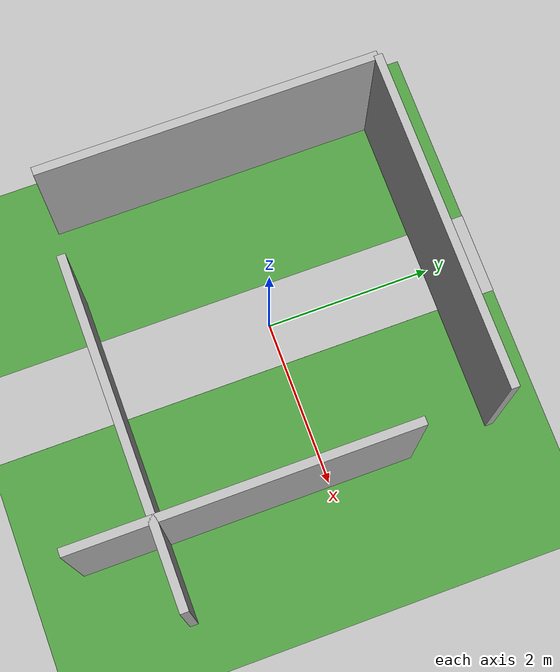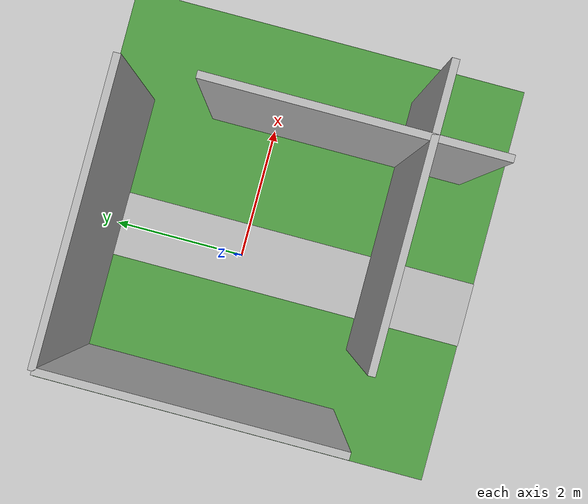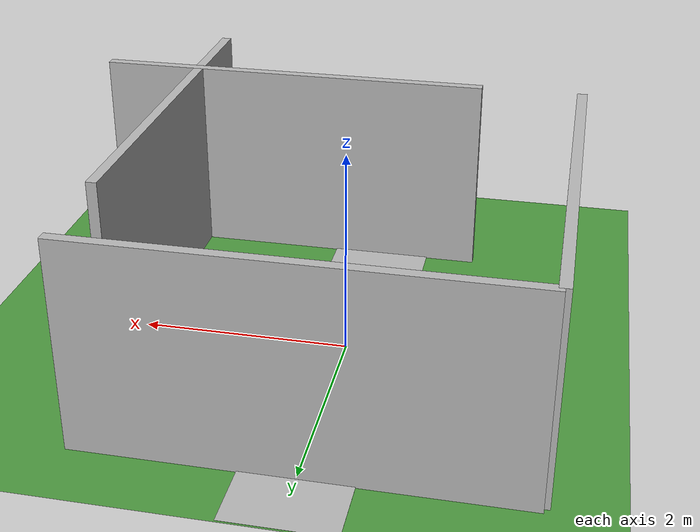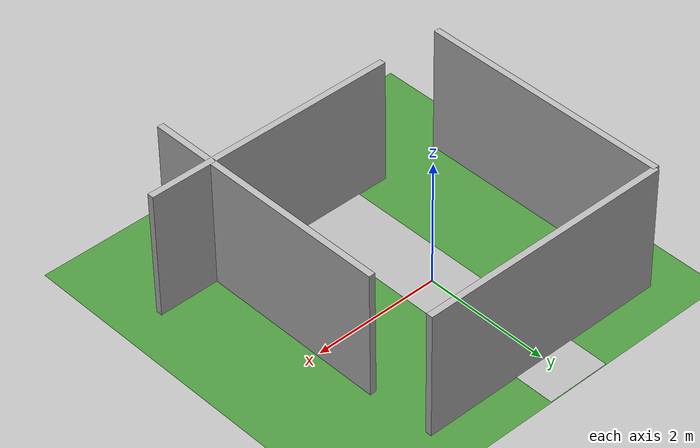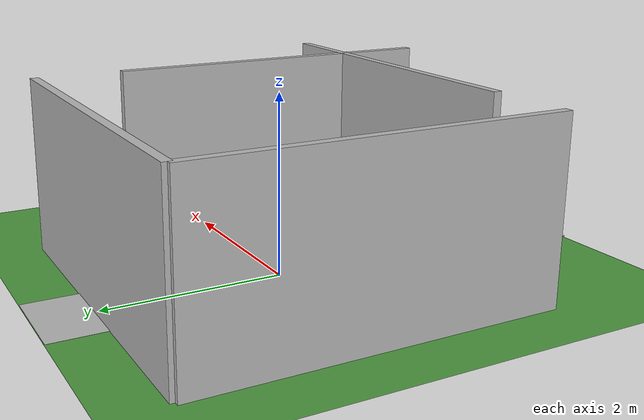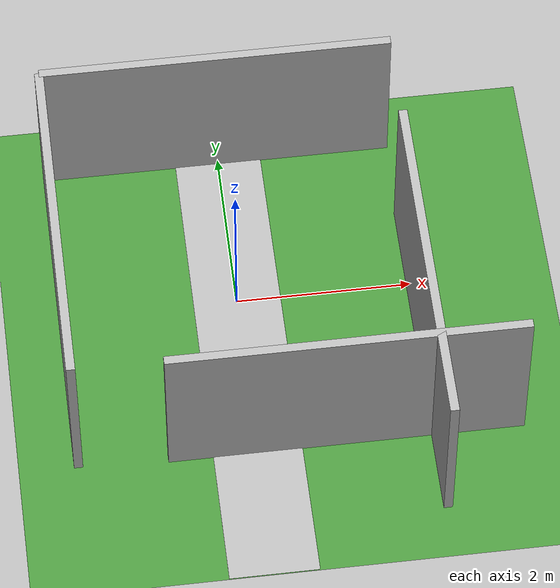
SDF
<sdf version='1.4'>
  <world name='default'>

    <!-- A global light source -->
    <include>
      <uri>model://sun</uri>
    </include>

    <!-- A custom grass-textured ground plane -->
    <model name="grass_ground">
      <static>true</static>
      <link name="ground_link">
        <collision name="ground_collision">
          <geometry>
            <plane>
              <normal>0 0 1</normal>
              <size>100 100</size>
            </plane>
          </geometry>
        </collision>
        <visual name="ground_visual">
          <geometry>
            <plane>
              <normal>0 0 1</normal>
              <size>100 100</size>
            </plane>
          </geometry>
          <material>
            <script>
              <uri>file://media/materials/scripts/gazebo.material</uri>
              <name>Gazebo/Grass</name>
            </script>
          </material>
        </visual>
      </link>
    </model>

    <!-- Sidewalk path -->
    <model name="sidewalk_path">
      <static>true</static>
      <!-- Slightly above grass -->
      <pose>0 0 0.01 0 0 0</pose>
      <link name="sidewalk_link">
        <collision name="sidewalk_collision">
          <geometry>
            <plane>
              <normal>0 0 1</normal>
              <size>1 30</size>
            </plane>
          </geometry>
        </collision>
        <visual name="sidewalk_visual">
          <geometry>
            <plane>
              <normal>0 0 1</normal>
              <size>1 30</size>
            </plane>
          </geometry>
          <material>
            <script>
              <uri>file://media/materials/scripts/gazebo.material</uri>
              <name>Gazebo/Concrete</name>
            </script>
          </material>
        </visual>
      </link>
    </model>

    <!-- Physics settings -->
    <physics type="ode">
      <real_time_update_rate>1000.0</real_time_update_rate>
      <max_step_size>0.001</max_step_size>
      <real_time_factor>1</real_time_factor>
      <ode>
        <solver>
          <type>quick</type>
          <iters>150</iters>
          <precon_iters>0</precon_iters>
          <sor>1.400000</sor>
          <use_dynamic_moi_rescaling>1</use_dynamic_moi_rescaling>
        </solver>
        <constraints>
          <cfm>0.00001</cfm>
          <erp>0.2</erp>
          <contact_max_correcting_vel>2000.000000</contact_max_correcting_vel>
          <contact_surface_layer>0.01000</contact_surface_layer>
        </constraints>
      </ode>
    </physics>

    <!-- Wall 1 - Front -->
    <model name="wall_1">
      <static>true</static>
      <link name="link">
        <collision name="collision">
          <geometry>
            <box>
              <size>4 0.1 2</size>
            </box>
          </geometry>
        </collision>
        <visual name="visual">
          <geometry>
            <box>
              <size>4 0.1 2</size>
            </box>
          </geometry>
        </visual>
        <pose>0 2 1 0 0 0</pose>
      </link>
    </model>

    <!-- Wall 2 - Left -->
    <model name="wall_2">
      <static>true</static>
      <link name="link">
        <collision name="collision">
          <geometry>
            <box>
              <size>0.1 4 2</size>
            </box>
          </geometry>
        </collision>
        <visual name="visual">
          <geometry>
            <box>
              <size>0.1 4 2</size>
            </box>
          </geometry>
        </visual>
        <pose>-2 0 1 0 0 0</pose>
      </link>
    </model>

    <!-- Wall 3 - Right -->
    <model name="wall_3">
      <static>true</static>
      <link name="link">
        <collision name="collision">
          <geometry>
            <box>
              <size>0.1 4 2</size>
            </box>
          </geometry>
        </collision>
        <visual name="visual">
          <geometry>
            <box>
              <size>0.1 4 2</size>
            </box>
          </geometry>
        </visual>
        <pose>2 -1 1 0 0 0</pose>
      </link>
    </model>

    <!-- Wall 4 - Back (offset to not form a square) -->
    <model name="wall_4">
      <static>true</static>
      <link name="link">
        <collision name="collision">
          <geometry>
            <box>
              <size>4 0.1 2</size>
            </box>
          </geometry>
        </collision>
        <visual name="visual">
          <geometry>
            <box>
              <size>4 0.1 2</size>
            </box>
          </geometry>
        </visual>
        <pose>1 -2 1 0 0 0</pose>
      </link>
    </model>

    <!-- Scene settings -->
    <scene>
      <ambient>0.4 0.4 0.4 1</ambient>
      <background>0.7 0.7 0.7 1</background>
      <shadows>true</shadows>
    </scene>

    <!-- GUI camera -->
    <gui fullscreen='0'>
      <camera name='user_camera'>
        <pose>0.8 0.0 12.0 0 1.5708 0</pose>
        <view_controller>orbit</view_controller>
      </camera>
    </gui>

  </world>
</sdf>
